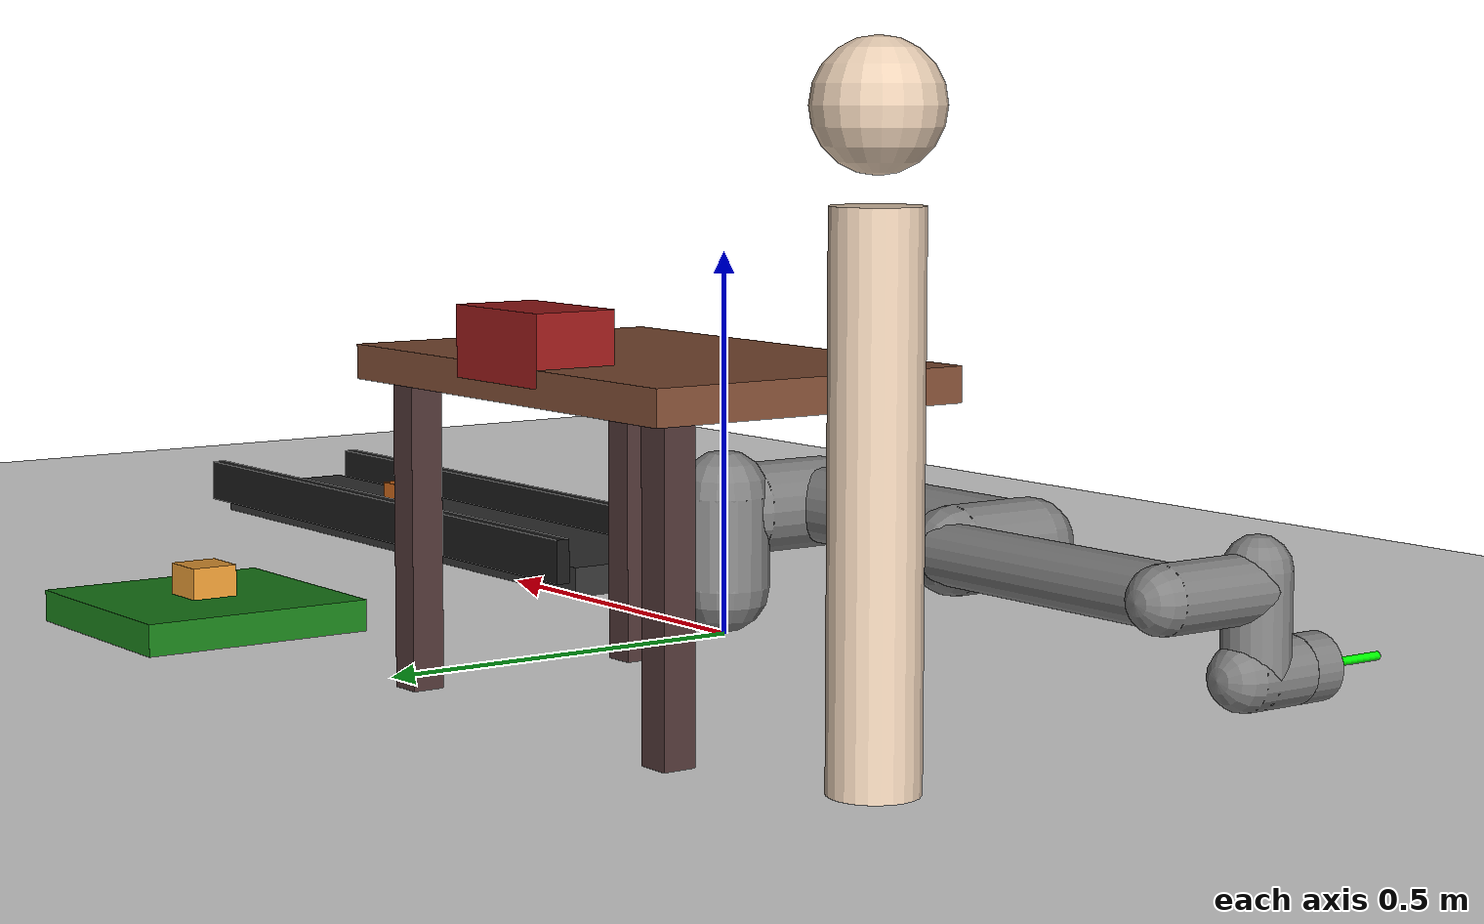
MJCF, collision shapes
<mujoco model="ur5e_scene">

  <include file="ur5e.xml"/>

  <statistic center="0.3 0 0.4" extent="0.8"/>

  <visual>
    <headlight diffuse="0.6 0.6 0.6" ambient="0.1 0.1 0.1" specular="0 0 0"/>
    <rgba haze="0.15 0.25 0.35 1"/>
    <global azimuth="120" elevation="-20"/>
  </visual>

  <!-- Textures and materials -->
  <asset>
    <!-- Gradient sky -->
    <texture
      name="skybox"
      type="skybox"
      builtin="gradient"
      rgb1="0.3 0.5 0.7"
      rgb2="0.0 0.0 0.0"
      width="512"
      height="512"/>

    <!-- Ground texture -->
    <texture
      name="groundplane"
      type="2d"
      builtin="checker"
      rgb1="0.9 0.9 0.9"
      rgb2="0.8 0.8 0.8"
      width="300"
      height="300"
      mark="edge"
      markrgb="0.7 0.7 0.7"/>

    <material
      name="groundplane_mat"
      texture="groundplane"
      texuniform="true"/>
  </asset>

  <worldbody>
    <!-- Main light -->
    <light pos="0 0 3" dir="0 0 -1" directional="true"/>

    <!-- Side light -->
    <light pos="2 -2 2" dir="-1 1 -1" diffuse="0.4 0.4 0.4" specular="0.2 0.2 0.2"/>

    <!-- Floor -->
    <geom
      name="floor"
      type="plane"
      size="5 5 0.1"
      material="groundplane_mat"
      rgba="0.9 0.9 0.9 1"/>

    <!-- Conveyor -->
    <body name="conveyor" pos="0.7 0.0 0.05">
      <!-- Belt surface -->
      <geom
        type="box"
        size="0.5 0.1 0.02"
        rgba="0.2 0.2 0.2 1"/>
      <!-- Side rails -->
      <geom
        type="box"
        pos="0 0.12 0.03"
        size="0.5 0.01 0.03"
        rgba="0.1 0.1 0.1 1"/>
      <geom
        type="box"
        pos="0 -0.12 0.03"
        size="0.5 0.01 0.03"
        rgba="0.1 0.1 0.1 1"/>
    </body>

    <!-- Stacking area -->
    <body name="stacking_area" pos="0.3 0.6 0.05">
      <geom
        type="box"
        size="0.15 0.15 0.02"
        rgba="0.1 0.5 0.1 1"/>
    </body>

    <!-- Box on conveyor -->
    <body name="box_on_conveyor" pos="0.8 0.0 0.08">
      <geom
        type="box"
        size="0.03 0.03 0.03"
        rgba="0.8 0.4 0.1 1"
        mass="0.1"/>
    </body>

    <!-- Box on stacking area -->
    <body name="box_on_stack" pos="0.3 0.6 0.08">
      <geom
        type="box"
        size="0.03 0.03 0.03"
        rgba="0.9 0.6 0.2 1"
        mass="0.1"/>
    </body>

    <!-- Work table near the robot -->
    <body name="work_table" pos="-0.4 0.4 0.4">
      <!-- Table top -->
      <geom
        type="box"
        size="0.3 0.2 0.02"
        rgba="0.5 0.3 0.2 1"/>
      <!-- Four legs -->
      <geom
        type="box"
        pos="0.25 0.15 -0.19"
        size="0.02 0.02 0.19"
        rgba="0.3 0.2 0.2 1"/>
      <geom
        type="box"
        pos="-0.25 0.15 -0.19"
        size="0.02 0.02 0.19"
        rgba="0.3 0.2 0.2 1"/>
      <geom
        type="box"
        pos="0.25 -0.15 -0.19"
        size="0.02 0.02 0.19"
        rgba="0.3 0.2 0.2 1"/>
      <geom
        type="box"
        pos="-0.25 -0.15 -0.19"
        size="0.02 0.02 0.19"
        rgba="0.3 0.2 0.2 1"/>
    </body>

    <!-- Toolbox on the table -->
    <body name="toolbox" pos="-0.4 0.55 0.44">
      <geom
        type="box"
        size="0.08 0.05 0.04"
        rgba="0.6 0.1 0.1 1"/>
    </body>

    <!-- Worker figure -->
    <body name="worker" pos="-0.8 0.4 0.0">
      <!-- Body -->
      <geom
        type="cylinder"
        size="0.05 0.3"
        pos="0 0 0.3"
        rgba="0.9 0.8 0.7 1"/>
      <!-- Head -->
      <geom
        type="sphere"
        size="0.07"
        pos="0 0 0.7"
        rgba="0.9 0.8 0.7 1"/>
    </body>

  </worldbody>
</mujoco>

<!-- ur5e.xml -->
<mujoco model="ur5e">
  <compiler angle="radian" meshdir="assets" autolimits="true" />

  <option integrator="implicitfast" />

  <default>
    <default class="ur5e">
      <material specular="0.5" shininess="0.25" />
      <joint axis="0 1 0" range="-6.28319 6.28319" armature="0.1" />
      <general gaintype="fixed" biastype="affine" ctrlrange="-6.2831 6.2831" gainprm="2000"
        biasprm="0 -2000 -400"
        forcerange="-150 150" />
      <default class="size3">
        <default class="size3_limited">
          <joint range="-3.1415 3.1415" />
          <general ctrlrange="-3.1415 3.1415" />
        </default>
      </default>
      <default class="size1">
        <general gainprm="500" biasprm="0 -500 -100" forcerange="-28 28" />
      </default>
      <default class="visual">
        <geom type="mesh" contype="0" conaffinity="0" group="2" />
      </default>
      <default class="collision">
        <geom type="capsule" group="3" />
        <default class="eef_collision">
          <geom type="cylinder" />
        </default>
      </default>
      <site size="0.001" rgba="0.5 0.5 0.5 0.3" group="4" />
    </default>
  </default>

  <asset>
    <material class="ur5e" name="black" rgba="0.033 0.033 0.033 1" />
    <material class="ur5e" name="jointgray" rgba="0.278 0.278 0.278 1" />
    <material class="ur5e" name="linkgray" rgba="0.82 0.82 0.82 1" />
    <material class="ur5e" name="urblue" rgba="0.49 0.678 0.8 1" />

    <mesh file="base_0.obj" />
    <mesh file="base_1.obj" />
    <mesh file="shoulder_0.obj" />
    <mesh file="shoulder_1.obj" />
    <mesh file="shoulder_2.obj" />
    <mesh file="upperarm_0.obj" />
    <mesh file="upperarm_1.obj" />
    <mesh file="upperarm_2.obj" />
    <mesh file="upperarm_3.obj" />
    <mesh file="forearm_0.obj" />
    <mesh file="forearm_1.obj" />
    <mesh file="forearm_2.obj" />
    <mesh file="forearm_3.obj" />
    <mesh file="wrist1_0.obj" />
    <mesh file="wrist1_1.obj" />
    <mesh file="wrist1_2.obj" />
    <mesh file="wrist2_0.obj" />
    <mesh file="wrist2_1.obj" />
    <mesh file="wrist2_2.obj" />
    <mesh file="wrist3.obj" />
  </asset>

  <worldbody>
    <light name="spotlight" mode="targetbodycom" target="wrist_2_link" pos="0 -1 2" />
    <body name="base" quat="0 0 0 -1" childclass="ur5e">
      <inertial mass="4.0" pos="0 0 0" diaginertia="0.00443333156 0.00443333156 0.0072" />
      <geom mesh="base_0" material="black" class="visual" />
      <geom mesh="base_1" material="jointgray" class="visual" />
      <body name="shoulder_link" pos="0 0 0.163">
        <inertial mass="3.7" pos="0 0 0" diaginertia="0.0102675 0.0102675 0.00666" />
        <joint name="shoulder_pan_joint" class="size3" axis="0 0 1" />
        <geom mesh="shoulder_0" material="urblue" class="visual" />
        <geom mesh="shoulder_1" material="black" class="visual" />
        <geom mesh="shoulder_2" material="jointgray" class="visual" />
        <geom class="collision" size="0.06 0.06" pos="0 0 -0.04" />
        <body name="upper_arm_link" pos="0 0.138 0" quat="1 0 1 0">
          <inertial mass="8.393" pos="0 0 0.2125" diaginertia="0.133886 0.133886 0.0151074" />
          <joint name="shoulder_lift_joint" class="size3" />
          <geom mesh="upperarm_0" material="linkgray" class="visual" />
          <geom mesh="upperarm_1" material="black" class="visual" />
          <geom mesh="upperarm_2" material="jointgray" class="visual" />
          <geom mesh="upperarm_3" material="urblue" class="visual" />
          <geom class="collision" pos="0 -0.04 0" quat="1 1 0 0" size="0.06 0.06" />
          <geom class="collision" size="0.05 0.2" pos="0 0 0.2" />
          <body name="forearm_link" pos="0 -0.131 0.425">
            <inertial mass="2.275" pos="0 0 0.196" diaginertia="0.0311796 0.0311796 0.004095" />
            <joint name="elbow_joint" class="size3_limited" />
            <geom mesh="forearm_0" material="urblue" class="visual" />
            <geom mesh="forearm_1" material="linkgray" class="visual" />
            <geom mesh="forearm_2" material="black" class="visual" />
            <geom mesh="forearm_3" material="jointgray" class="visual" />
            <geom class="collision" pos="0 0.08 0" quat="1 1 0 0" size="0.055 0.06" />
            <geom class="collision" size="0.038 0.19" pos="0 0 0.2" />
            <body name="wrist_1_link" pos="0 0 0.392" quat="1 0 1 0">
              <inertial mass="1.219" pos="0 0.127 0" diaginertia="0.0025599 0.0025599 0.0021942" />
              <joint name="wrist_1_joint" class="size1" />
              <geom mesh="wrist1_0" material="black" class="visual" />
              <geom mesh="wrist1_1" material="urblue" class="visual" />
              <geom mesh="wrist1_2" material="jointgray" class="visual" />
              <geom class="collision" pos="0 0.05 0" quat="1 1 0 0" size="0.04 0.07" />
              <body name="wrist_2_link" pos="0 0.127 0">
                <inertial mass="1.219" pos="0 0 0.1" diaginertia="0.0025599 0.0025599 0.0021942" />
                <joint name="wrist_2_joint" axis="0 0 1" class="size1" />
                <geom mesh="wrist2_0" material="black" class="visual" />
                <geom mesh="wrist2_1" material="urblue" class="visual" />
                <geom mesh="wrist2_2" material="jointgray" class="visual" />
                <geom class="collision" size="0.04 0.06" pos="0 0 0.04" />
                <geom class="collision" pos="0 0.02 0.1" quat="1 1 0 0" size="0.04 0.04" />
                <body name="wrist_3_link" pos="0 0 0.1">
                  <inertial mass="0.1889" pos="0 0.0771683 0" quat="1 0 0 1"
                    diaginertia="0.000132134 9.90863e-05 9.90863e-05" />
                  <joint name="wrist_3_joint" class="size1" />
                  <geom material="linkgray" mesh="wrist3" class="visual" />
                  <geom class="eef_collision" pos="0 0.08 0" quat="1 1 0 0" size="0.04 0.02" />

                  <site name="attachment_site" pos="0 0.1 0" quat="-1 1 0 0" />

                  <site name="ee_viz_pos" pos="0 0.1 0" size="0.015" type="sphere" rgba="1 0 0 1"
                    group="1" />

                  <site name="ee_viz_dir" pos="0 0.1 0" quat="-1 1 0 0" size="0.005 0.1"
                    type="cylinder" rgba="0 1 0 1" group="1" />

                </body>
              </body>
            </body>
          </body>
        </body>
      </body>
    </body>
  </worldbody>

  <actuator>
    <general class="size3" name="shoulder_pan" joint="shoulder_pan_joint" />
    <general class="size3" name="shoulder_lift" joint="shoulder_lift_joint" />
    <general class="size3_limited" name="elbow" joint="elbow_joint" />
    <general class="size1" name="wrist_1" joint="wrist_1_joint" />
    <general class="size1" name="wrist_2" joint="wrist_2_joint" />
    <general class="size1" name="wrist_3" joint="wrist_3_joint" />
  </actuator>

  <keyframe>
    <key name="home" qpos="-1.5708 -1.5708 1.5708 -1.5708 -1.5708 0"
      ctrl="-1.5708 -1.5708 1.5708 -1.5708 -1.5708 0" />
  </keyframe>
</mujoco>
